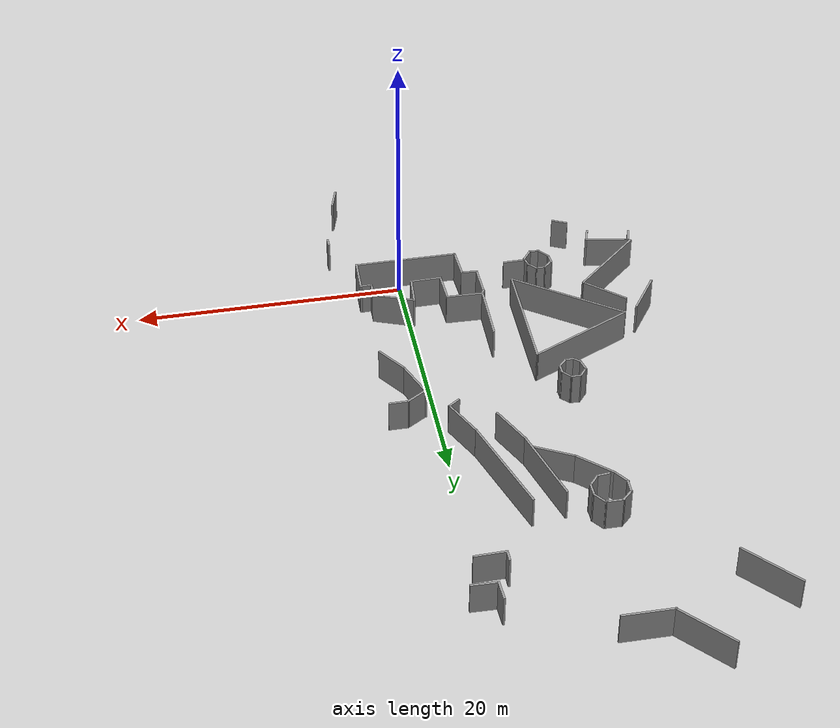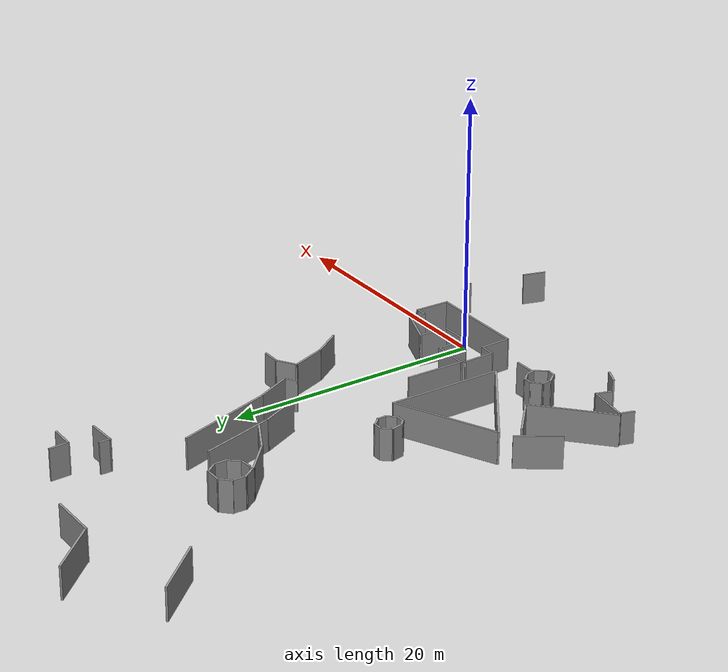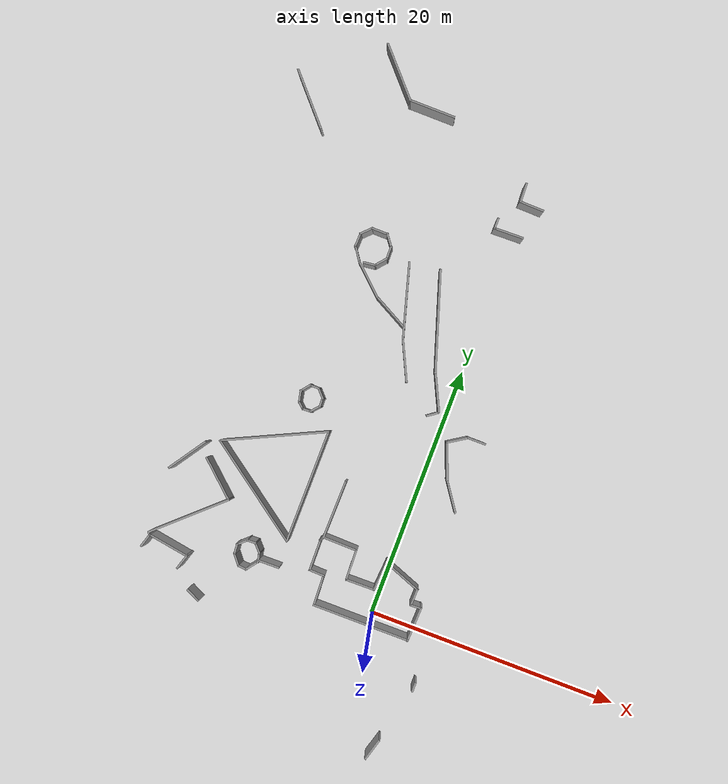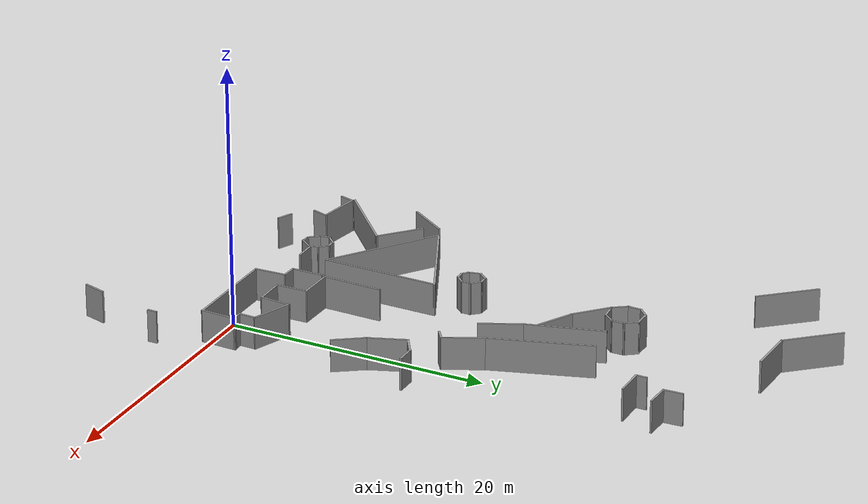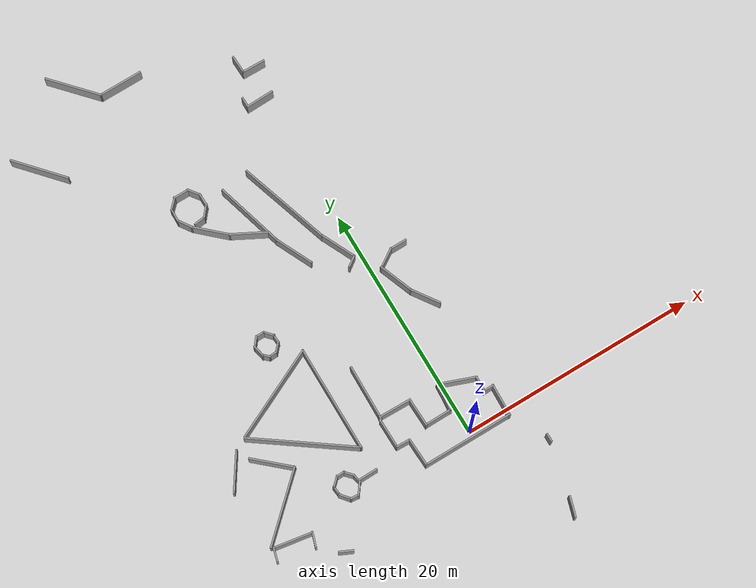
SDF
<sdf version="1.6">
 <model name="mall_new_reduce_size">
  <pose>-6.80917 7.5529 0 0 -0 0</pose>
  <link name="Wall_102">
   <collision name="Wall_102_Collision">
    <geometry><box><size>0.911014 0.15 2.5</size></box></geometry>
    <pose>0 0 1.25 0 -0 0</pose>
   </collision>
   <visual name="Wall_102_Visual">
    <pose>0 0 1.25 0 -0 0</pose>
    <geometry><box><size>0.911014 0.15 2.5</size></box></geometry>
    <material>
     <script><uri>file://media/materials/scripts/gazebo.material</uri><name>Gazebo/Grey</name></script>
     <ambient>1 1 1 1</ambient>
    </material>
    <meta><layer>0</layer></meta>
   </visual>
   <pose>5.13908 23.8484 0 0 -0 -1.5708</pose>
  </link>
  <link name="Wall_103">
   <collision name="Wall_103_Collision">
    <geometry><box><size>2.3915 0.15 2.5</size></box></geometry>
    <pose>0 0 1.25 0 -0 0</pose>
   </collision>
   <visual name="Wall_103_Visual">
    <pose>0 0 1.25 0 -0 0</pose>
    <geometry><box><size>2.3915 0.15 2.5</size></box></geometry>
    <material>
     <script><uri>file://media/materials/scripts/gazebo.material</uri><name>Gazebo/Grey</name></script>
     <ambient>1 1 1 1</ambient>
    </material>
    <meta><layer>0</layer></meta>
   </visual>
   <pose>6.25953 23.4864 0 0 -0 0.02316</pose>
  </link>
  <link name="Wall_126">
   <collision name="Wall_126_Collision">
    <geometry><box><size>1.5 0.15 2.5</size></box></geometry>
    <pose>0 0 1.25 0 -0 0</pose>
   </collision>
   <visual name="Wall_126_Visual">
    <pose>0 0 1.25 0 -0 0</pose>
    <geometry><box><size>1.5 0.15 2.5</size></box></geometry>
    <material>
     <script><uri>file://media/materials/scripts/gazebo.material</uri><name>Gazebo/Grey</name></script>
     <ambient>1 1 1 1</ambient>
    </material>
    <meta><layer>0</layer></meta>
   </visual>
   <pose>9.56035 7.86068 0 0 -0 3.14159</pose>
  </link>
  <link name="Wall_127">
   <collision name="Wall_127_Collision">
    <geometry><box><size>1.79669 0.15 2.5</size></box></geometry>
    <pose>0 0 1.25 0 -0 0</pose>
   </collision>
   <visual name="Wall_127_Visual">
    <pose>0 0 1.25 0 -0 0</pose>
    <geometry><box><size>1.79669 0.15 2.5</size></box></geometry>
    <material>
     <script><uri>file://media/materials/scripts/gazebo.material</uri><name>Gazebo/Grey</name></script>
     <ambient>1 1 1 1</ambient>
    </material>
    <meta><layer>0</layer></meta>
   </visual>
   <pose>8.19253 7.41582 0 0 -0 -2.57079</pose>
  </link>
  <link name="Wall_128">
   <collision name="Wall_128_Collision">
    <geometry><box><size>3.04987 0.15 2.5</size></box></geometry>
    <pose>0 0 1.25 0 -0 0</pose>
   </collision>
   <visual name="Wall_128_Visual">
    <pose>0 0 1.25 0 -0 0</pose>
    <geometry><box><size>3.04987 0.15 2.5</size></box></geometry>
    <material>
     <script><uri>file://media/materials/scripts/gazebo.material</uri><name>Gazebo/Grey</name></script>
     <ambient>1 1 1 1</ambient>
    </material>
    <meta><layer>0</layer></meta>
   </visual>
   <pose>8.01735 5.63901 0 0 -0 -1.20574</pose>
  </link>
  <link name="Wall_129">
   <collision name="Wall_129_Collision">
    <geometry><box><size>2.67124 0.15 2.5</size></box></geometry>
    <pose>0 0 1.25 0 -0 0</pose>
   </collision>
   <visual name="Wall_129_Visual">
    <pose>0 0 1.25 0 -0 0</pose>
    <geometry><box><size>2.67124 0.15 2.5</size></box></geometry>
    <material>
     <script><uri>file://media/materials/scripts/gazebo.material</uri><name>Gazebo/Grey</name></script>
     <ambient>1 1 1 1</ambient>
    </material>
    <meta><layer>0</layer></meta>
   </visual>
   <pose>9.25128 3.23607 0 0 -0 -0.966457</pose>
  </link>
  <link name="Wall_221">
   <collision name="Wall_221_Collision">
    <geometry><box><size>1.80269 0.15 2.5</size></box></geometry>
    <pose>0 0 1.25 0 -0 0</pose>
   </collision>
   <visual name="Wall_221_Visual">
    <pose>0 0 1.25 0 -0 0</pose>
    <geometry><box><size>1.80269 0.15 2.5</size></box></geometry>
    <material>
     <script><uri>file://media/materials/scripts/gazebo.material</uri><name>Gazebo/Grey</name></script>
     <ambient>1 1 1 1</ambient>
    </material>
    <meta><layer>0</layer></meta>
   </visual>
   <pose>10.4346 -16.8787 0 0 -0 1.2841</pose>
  </link>
  <link name="Wall_232">
   <collision name="Wall_232_Collision">
    <geometry><box><size>0.75 0.15 2.5</size></box></geometry>
    <pose>0 0 1.25 0 -0 0</pose>
   </collision>
   <visual name="Wall_232_Visual">
    <pose>0 0 1.25 0 -0 0</pose>
    <geometry><box><size>0.75 0.15 2.5</size></box></geometry>
    <material>
     <script><uri>file://media/materials/scripts/gazebo.material</uri><name>Gazebo/Grey</name></script>
     <ambient>1 1 1 1</ambient>
    </material>
    <meta><layer>0</layer></meta>
   </visual>
   <pose>11.7121 -11.3214 0 0 -0 1.5708</pose>
  </link>
  <link name="Wall_245">
   <collision name="Wall_245_Collision">
    <geometry><box><size>4.70437 0.15 2.5</size></box></geometry>
    <pose>0 0 1.25 0 -0 0</pose>
   </collision>
   <visual name="Wall_245_Visual">
    <pose>0 0 1.25 0 -0 0</pose>
    <geometry><box><size>4.70437 0.15 2.5</size></box></geometry>
    <material>
     <script><uri>file://media/materials/scripts/gazebo.material</uri><name>Gazebo/Grey</name></script>
     <ambient>1 1 1 1</ambient>
    </material>
    <meta><layer>0</layer></meta>
   </visual>
   <pose>1.30808 -0.867008 0 0 -0 -1.58931</pose>
  </link>
  <link name="Wall_246">
   <collision name="Wall_246_Collision">
    <geometry><box><size>0.40844 0.15 2.5</size></box></geometry>
    <pose>0 0 1.25 0 -0 0</pose>
   </collision>
   <visual name="Wall_246_Visual">
    <pose>0 0 1.25 0 -0 0</pose>
    <geometry><box><size>0.40844 0.15 2.5</size></box></geometry>
    <material>
     <script><uri>file://media/materials/scripts/gazebo.material</uri><name>Gazebo/Grey</name></script>
     <ambient>1 1 1 1</ambient>
    </material>
    <meta><layer>0</layer></meta>
   </visual>
   <pose>1.19003 -3.26525 0 0 -0 -2.19847</pose>
  </link>
  <link name="Wall_247">
   <collision name="Wall_247_Collision">
    <geometry><box><size>2.53 0.15 2.5</size></box></geometry>
    <pose>0 0 1.25 0 -0 0</pose>
   </collision>
   <visual name="Wall_247_Visual">
    <pose>0 0 1.25 0 -0 0</pose>
    <geometry><box><size>2.53 0.15 2.5</size></box></geometry>
    <material>
     <script><uri>file://media/materials/scripts/gazebo.material</uri><name>Gazebo/Grey</name></script>
     <ambient>1 1 1 1</ambient>
    </material>
    <meta><layer>0</layer></meta>
   </visual>
   <pose>1.14793 -4.55973 0 0 -0 -1.55658</pose>
  </link>
  <link name="Wall_248">
   <collision name="Wall_248_Collision">
    <geometry><box><size>1.286 0.15 2.5</size></box></geometry>
    <pose>0 0 1.25 0 -0 0</pose>
   </collision>
   <visual name="Wall_248_Visual">
    <pose>0 0 1.25 0 -0 0</pose>
    <geometry><box><size>1.286 0.15 2.5</size></box></geometry>
    <material>
     <script><uri>file://media/materials/scripts/gazebo.material</uri><name>Gazebo/Grey</name></script>
     <ambient>1 1 1 1</ambient>
    </material>
    <meta><layer>0</layer></meta>
   </visual>
   <pose>1.73245 -5.78757 0 0 -0 -0.037153</pose>
  </link>
  <link name="Wall_249">
   <collision name="Wall_249_Collision">
    <geometry><box><size>2.45157 0.15 2.5</size></box></geometry>
    <pose>0 0 1.25 0 -0 0</pose>
   </collision>
   <visual name="Wall_249_Visual">
    <pose>0 0 1.25 0 -0 0</pose>
    <geometry><box><size>2.45157 0.15 2.5</size></box></geometry>
    <material>
     <script><uri>file://media/materials/scripts/gazebo.material</uri><name>Gazebo/Grey</name></script>
     <ambient>1 1 1 1</ambient>
    </material>
    <meta><layer>0</layer></meta>
   </visual>
   <pose>2.35085 -6.98766 0 0 -0 -1.52665</pose>
  </link>
  <link name="Wall_250">
   <collision name="Wall_250_Collision">
    <geometry><box><size>7.76065 0.15 2.5</size></box></geometry>
    <pose>0 0 1.25 0 -0 0</pose>
   </collision>
   <visual name="Wall_250_Visual">
    <pose>0 0 1.25 0 -0 0</pose>
    <geometry><box><size>7.76065 0.15 2.5</size></box></geometry>
    <material>
     <script><uri>file://media/materials/scripts/gazebo.material</uri><name>Gazebo/Grey</name></script>
     <ambient>1 1 1 1</ambient>
    </material>
    <meta><layer>0</layer></meta>
   </visual>
   <pose>6.20696 -8.14975 0 0 -0 0.000586</pose>
  </link>
  <link name="Wall_251">
   <collision name="Wall_251_Collision">
    <geometry><box><size>2.80823 0.15 2.5</size></box></geometry>
    <pose>0 0 1.25 0 -0 0</pose>
   </collision>
   <visual name="Wall_251_Visual">
    <pose>0 0 1.25 0 -0 0</pose>
    <geometry><box><size>2.80823 0.15 2.5</size></box></geometry>
    <material>
     <script><uri>file://media/materials/scripts/gazebo.material</uri><name>Gazebo/Grey</name></script>
     <ambient>1 1 1 1</ambient>
    </material>
    <meta><layer>0</layer></meta>
   </visual>
   <pose>10.0559 -6.84845 0 0 -0 1.53799</pose>
  </link>
  <link name="Wall_252">
   <collision name="Wall_252_Collision">
    <geometry><box><size>0.933606 0.15 2.5</size></box></geometry>
    <pose>0 0 1.25 0 -0 0</pose>
   </collision>
   <visual name="Wall_252_Visual">
    <pose>0 0 1.25 0 -0 0</pose>
    <geometry><box><size>0.933606 0.15 2.5</size></box></geometry>
    <material>
     <script><uri>file://media/materials/scripts/gazebo.material</uri><name>Gazebo/Grey</name></script>
     <ambient>1 1 1 1</ambient>
    </material>
    <meta><layer>0</layer></meta>
   </visual>
   <pose>9.70783 -5.54603 0 0 -0 -3.11272</pose>
  </link>
  <link name="Wall_253">
   <collision name="Wall_253_Collision">
    <geometry><box><size>1.38548 0.15 2.5</size></box></geometry>
    <pose>0 0 1.25 0 -0 0</pose>
   </collision>
   <visual name="Wall_253_Visual">
    <pose>0 0 1.25 0 -0 0</pose>
    <geometry><box><size>1.38548 0.15 2.5</size></box></geometry>
    <material>
     <script><uri>file://media/materials/scripts/gazebo.material</uri><name>Gazebo/Grey</name></script>
     <ambient>1 1 1 1</ambient>
    </material>
    <meta><layer>0</layer></meta>
   </visual>
   <pose>9.31734 -4.9398 0 0 -0 1.54519</pose>
  </link>
  <link name="Wall_254">
   <collision name="Wall_254_Collision">
    <geometry><box><size>3.27138 0.15 2.5</size></box></geometry>
    <pose>0 0 1.25 0 -0 0</pose>
   </collision>
   <visual name="Wall_254_Visual">
    <pose>0 0 1.25 0 -0 0</pose>
    <geometry><box><size>3.27138 0.15 2.5</size></box></geometry>
    <material>
     <script><uri>file://media/materials/scripts/gazebo.material</uri><name>Gazebo/Grey</name></script>
     <ambient>1 1 1 1</ambient>
    </material>
    <meta><layer>0</layer></meta>
   </visual>
   <pose>7.88874 -3.75366 0 0 -0 2.77875</pose>
  </link>
  <link name="Wall_255">
   <collision name="Wall_255_Collision">
    <geometry><box><size>2.43165 0.15 2.5</size></box></geometry>
    <pose>0 0 1.25 0 -0 0</pose>
   </collision>
   <visual name="Wall_255_Visual">
    <pose>0 0 1.25 0 -0 0</pose>
    <geometry><box><size>2.43165 0.15 2.5</size></box></geometry>
    <material>
     <script><uri>file://media/materials/scripts/gazebo.material</uri><name>Gazebo/Grey</name></script>
     <ambient>1 1 1 1</ambient>
    </material>
    <meta><layer>0</layer></meta>
   </visual>
   <pose>6.35442 -4.32233 0 0 -0 -1.64969</pose>
  </link>
  <link name="Wall_256">
   <collision name="Wall_256_Collision">
    <geometry><box><size>2.39373 0.15 2.5</size></box></geometry>
    <pose>0 0 1.25 0 -0 0</pose>
   </collision>
   <visual name="Wall_256_Visual">
    <pose>0 0 1.25 0 -0 0</pose>
    <geometry><box><size>2.39373 0.15 2.5</size></box></geometry>
    <material>
     <script><uri>file://media/materials/scripts/gazebo.material</uri><name>Gazebo/Grey</name></script>
     <ambient>1 1 1 1</ambient>
    </material>
    <meta><layer>0</layer></meta>
   </visual>
   <pose>5.14271 -5.45702 0 0 -0 -3.13083</pose>
  </link>
  <link name="Wall_257">
   <collision name="Wall_257_Collision">
    <geometry><box><size>2.48743 0.15 2.5</size></box></geometry>
    <pose>0 0 1.25 0 -0 0</pose>
   </collision>
   <visual name="Wall_257_Visual">
    <pose>0 0 1.25 0 -0 0</pose>
    <geometry><box><size>2.48743 0.15 2.5</size></box></geometry>
    <material>
     <script><uri>file://media/materials/scripts/gazebo.material</uri><name>Gazebo/Grey</name></script>
     <ambient>1 1 1 1</ambient>
    </material>
    <meta><layer>0</layer></meta>
   </visual>
   <pose>3.98296 -4.31566 0 0 -0 1.60328</pose>
  </link>
  <link name="Wall_258">
   <collision name="Wall_258_Collision">
    <geometry><box><size>2.86843 0.15 2.5</size></box></geometry>
    <pose>0 0 1.25 0 -0 0</pose>
   </collision>
   <visual name="Wall_258_Visual">
    <pose>0 0 1.25 0 -0 0</pose>
    <geometry><box><size>2.86843 0.15 2.5</size></box></geometry>
    <material>
     <script><uri>file://media/materials/scripts/gazebo.material</uri><name>Gazebo/Grey</name></script>
     <ambient>1 1 1 1</ambient>
    </material>
    <meta><layer>0</layer></meta>
   </visual>
   <pose>2.58612 -3.10264 0 0 -0 3.11933</pose>
  </link>
  <link name="Wall_262">
   <collision name="Wall_262_Collision">
    <geometry><box><size>8.27755 0.15 2.5</size></box></geometry>
    <pose>0 0 1.25 0 -0 0</pose>
   </collision>
   <visual name="Wall_262_Visual">
    <pose>0 0 1.25 0 -0 0</pose>
    <geometry><box><size>8.27755 0.15 2.5</size></box></geometry>
    <material>
     <script><uri>file://media/materials/scripts/gazebo.material</uri><name>Gazebo/Grey</name></script>
     <ambient>1 1 1 1</ambient>
    </material>
    <meta><layer>0</layer></meta>
   </visual>
   <pose>-4.89745 2.80266 0 0 -0 0.439294</pose>
  </link>
  <link name="Wall_263">
   <collision name="Wall_263_Collision">
    <geometry><box><size>9.01306 0.15 2.5</size></box></geometry>
    <pose>0 0 1.25 0 -0 0</pose>
   </collision>
   <visual name="Wall_263_Visual">
    <pose>0 0 1.25 0 -0 0</pose>
    <geometry><box><size>9.01306 0.15 2.5</size></box></geometry>
    <material>
     <script><uri>file://media/materials/scripts/gazebo.material</uri><name>Gazebo/Grey</name></script>
     <ambient>1 1 1 1</ambient>
    </material>
    <meta><layer>0</layer></meta>
   </visual>
   <pose>-1.21952 0.09951 0 0 -0 -1.57583</pose>
  </link>
  <link name="Wall_264">
   <collision name="Wall_264_Collision">
    <geometry><box><size>9.26002 0.15 2.5</size></box></geometry>
    <pose>0 0 1.25 0 -0 0</pose>
   </collision>
   <visual name="Wall_264_Visual">
    <pose>0 0 1.25 0 -0 0</pose>
    <geometry><box><size>9.26002 0.15 2.5</size></box></geometry>
    <material>
     <script><uri>file://media/materials/scripts/gazebo.material</uri><name>Gazebo/Grey</name></script>
     <ambient>1 1 1 1</ambient>
    </material>
    <meta><layer>0</layer></meta>
   </visual>
   <pose>-4.95834 -1.66721 0 0 -0 2.51669</pose>
  </link>
  <link name="Wall_267">
   <collision name="Wall_267_Collision">
    <geometry><box><size>0.820925 0.15 2.5</size></box></geometry>
    <pose>0 0 1.25 0 -0 0</pose>
   </collision>
   <visual name="Wall_267_Visual">
    <pose>0 0 1.25 0 -0 0</pose>
    <geometry><box><size>0.820925 0.15 2.5</size></box></geometry>
    <material>
     <script><uri>file://media/materials/scripts/gazebo.material</uri><name>Gazebo/Grey</name></script>
     <ambient>1 1 1 1</ambient>
    </material>
    <meta><layer>0</layer></meta>
   </visual>
   <pose>-4.64546 -6.23474 0 0 -0 1.67128</pose>
  </link>
  <link name="Wall_268">
   <collision name="Wall_268_Collision">
    <geometry><box><size>1.02099 0.15 2.5</size></box></geometry>
    <pose>0 0 1.25 0 -0 0</pose>
   </collision>
   <visual name="Wall_268_Visual">
    <pose>0 0 1.25 0 -0 0</pose>
    <geometry><box><size>1.02099 0.15 2.5</size></box></geometry>
    <material>
     <script><uri>file://media/materials/scripts/gazebo.material</uri><name>Gazebo/Grey</name></script>
     <ambient>1 1 1 1</ambient>
    </material>
    <meta><layer>0</layer></meta>
   </visual>
   <pose>-4.34926 -5.61512 0 0 -0 0.761586</pose>
  </link>
  <link name="Wall_269">
   <collision name="Wall_269_Collision">
    <geometry><box><size>0.764839 0.15 2.5</size></box></geometry>
    <pose>0 0 1.25 0 -0 0</pose>
   </collision>
   <visual name="Wall_269_Visual">
    <pose>0 0 1.25 0 -0 0</pose>
    <geometry><box><size>0.764839 0.15 2.5</size></box></geometry>
    <material>
     <script><uri>file://media/materials/scripts/gazebo.material</uri><name>Gazebo/Grey</name></script>
     <ambient>1 1 1 1</ambient>
    </material>
    <meta><layer>0</layer></meta>
   </visual>
   <pose>-3.71208 -5.32193 0 0 -0 0.023853</pose>
  </link>
  <link name="Wall_270">
   <collision name="Wall_270_Collision">
    <geometry><box><size>0.937561 0.15 2.5</size></box></geometry>
    <pose>0 0 1.25 0 -0 0</pose>
   </collision>
   <visual name="Wall_270_Visual">
    <pose>0 0 1.25 0 -0 0</pose>
    <geometry><box><size>0.937561 0.15 2.5</size></box></geometry>
    <material>
     <script><uri>file://media/materials/scripts/gazebo.material</uri><name>Gazebo/Grey</name></script>
     <ambient>1 1 1 1</ambient>
    </material>
    <meta><layer>0</layer></meta>
   </visual>
   <pose>-3.13761 -5.61857 0 0 -0 -0.825217</pose>
  </link>
  <link name="Wall_271">
   <collision name="Wall_271_Collision">
    <geometry><box><size>0.841723 0.15 2.5</size></box></geometry>
    <pose>0 0 1.25 0 -0 0</pose>
   </collision>
   <visual name="Wall_271_Visual">
    <pose>0 0 1.25 0 -0 0</pose>
    <geometry><box><size>0.841723 0.15 2.5</size></box></geometry>
    <material>
     <script><uri>file://media/materials/scripts/gazebo.material</uri><name>Gazebo/Grey</name></script>
     <ambient>1 1 1 1</ambient>
    </material>
    <meta><layer>0</layer></meta>
   </visual>
   <pose>-2.79889 -6.26091 0 0 -0 -1.36232</pose>
  </link>
  <link name="Wall_272">
   <collision name="Wall_272_Collision">
    <geometry><box><size>1.2184 0.15 2.5</size></box></geometry>
    <pose>0 0 1.25 0 -0 0</pose>
   </collision>
   <visual name="Wall_272_Visual">
    <pose>0 0 1.25 0 -0 0</pose>
    <geometry><box><size>1.2184 0.15 2.5</size></box></geometry>
    <material>
     <script><uri>file://media/materials/scripts/gazebo.material</uri><name>Gazebo/Grey</name></script>
     <ambient>1 1 1 1</ambient>
    </material>
    <meta><layer>0</layer></meta>
   </visual>
   <pose>-3.04961 -7.02531 0 0 -0 -2.21847</pose>
  </link>
  <link name="Wall_273">
   <collision name="Wall_273_Collision">
    <geometry><box><size>0.777136 0.15 2.5</size></box></geometry>
    <pose>0 0 1.25 0 -0 0</pose>
   </collision>
   <visual name="Wall_273_Visual">
    <pose>0 0 1.25 0 -0 0</pose>
    <geometry><box><size>0.777136 0.15 2.5</size></box></geometry>
    <material>
     <script><uri>file://media/materials/scripts/gazebo.material</uri><name>Gazebo/Grey</name></script>
     <ambient>1 1 1 1</ambient>
    </material>
    <meta><layer>0</layer></meta>
   </visual>
   <pose>-3.68436 -7.41023 0 0 -0 3.05721</pose>
  </link>
  <link name="Wall_274">
   <collision name="Wall_274_Collision">
    <geometry><box><size>1.15435 0.15 2.5</size></box></geometry>
    <pose>0 0 1.25 0 -0 0</pose>
   </collision>
   <visual name="Wall_274_Visual">
    <pose>0 0 1.25 0 -0 0</pose>
    <geometry><box><size>1.15435 0.15 2.5</size></box></geometry>
    <material>
     <script><uri>file://media/materials/scripts/gazebo.material</uri><name>Gazebo/Grey</name></script>
     <ambient>1 1 1 1</ambient>
    </material>
    <meta><layer>0</layer></meta>
   </visual>
   <pose>-4.31455 -7.00602 0 0 -0 2.25587</pose>
  </link>
  <link name="Wall_280">
   <collision name="Wall_280_Collision">
    <geometry><box><size>1.75812 0.15 2.5</size></box></geometry>
    <pose>0 0 1.25 0 -0 0</pose>
   </collision>
   <visual name="Wall_280_Visual">
    <pose>0 0 1.25 0 -0 0</pose>
    <geometry><box><size>1.75812 0.15 2.5</size></box></geometry>
    <material>
     <script><uri>file://media/materials/scripts/gazebo.material</uri><name>Gazebo/Grey</name></script>
     <ambient>1 1 1 1</ambient>
    </material>
    <meta><layer>0</layer></meta>
   </visual>
   <pose>-1.93612 -6.45549 0 0 -0 0.013364</pose>
  </link>
  <link name="Wall_284">
   <collision name="Wall_284_Collision">
    <geometry><box><size>1.3189 0.15 2.5</size></box></geometry>
    <pose>0 0 1.25 0 -0 0</pose>
   </collision>
   <visual name="Wall_284_Visual">
    <pose>0 0 1.25 0 -0 0</pose>
    <geometry><box><size>1.3189 0.15 2.5</size></box></geometry>
    <material>
     <script><uri>file://media/materials/scripts/gazebo.material</uri><name>Gazebo/Grey</name></script>
     <ambient>1 1 1 1</ambient>
    </material>
    <meta><layer>0</layer></meta>
   </visual>
   <pose>-8.11493 -8.61894 0 0 -0 1.26497</pose>
  </link>
  <link name="Wall_285">
   <collision name="Wall_285_Collision">
    <geometry><box><size>3.37777 0.15 2.5</size></box></geometry>
    <pose>0 0 1.25 0 -0 0</pose>
   </collision>
   <visual name="Wall_285_Visual">
    <pose>0 0 1.25 0 -0 0</pose>
    <geometry><box><size>3.37777 0.15 2.5</size></box></geometry>
    <material>
     <script><uri>file://media/materials/scripts/gazebo.material</uri><name>Gazebo/Grey</name></script>
     <ambient>1 1 1 1</ambient>
    </material>
    <meta><layer>0</layer></meta>
   </visual>
   <pose>-9.56079 -7.81441 0 0 -0 2.97862</pose>
  </link>
  <link name="Wall_286">
   <collision name="Wall_286_Collision">
    <geometry><box><size>1.21161 0.15 2.5</size></box></geometry>
    <pose>0 0 1.25 0 -0 0</pose>
   </collision>
   <visual name="Wall_286_Visual">
    <pose>0 0 1.25 0 -0 0</pose>
    <geometry><box><size>1.21161 0.15 2.5</size></box></geometry>
    <material>
     <script><uri>file://media/materials/scripts/gazebo.material</uri><name>Gazebo/Grey</name></script>
     <ambient>1 1 1 1</ambient>
    </material>
    <meta><layer>0</layer></meta>
   </visual>
   <pose>-11.2883 -8.06181 0 0 -0 -1.85667</pose>
  </link>
  <link name="Wall_289">
   <collision name="Wall_289_Collision">
    <geometry><box><size>3.74389 0.15 2.5</size></box></geometry>
    <pose>0 0 1.25 0 -0 0</pose>
   </collision>
   <visual name="Wall_289_Visual">
    <pose>0 0 1.25 0 -0 0</pose>
    <geometry><box><size>3.74389 0.15 2.5</size></box></geometry>
    <material>
     <script><uri>file://media/materials/scripts/gazebo.material</uri><name>Gazebo/Grey</name></script>
     <ambient>1 1 1 1</ambient>
    </material>
    <meta><layer>0</layer></meta>
   </visual>
   <pose>-7.8177 -1.7822 0 0 -0 -0.730552</pose>
  </link>
  <link name="Wall_293">
   <collision name="Wall_293_Collision">
    <geometry><box><size>6.69055 0.15 2.5</size></box></geometry>
    <pose>0 0 1.25 0 -0 0</pose>
   </collision>
   <visual name="Wall_293_Visual">
    <pose>0 0 1.25 0 -0 0</pose>
    <geometry><box><size>6.69055 0.15 2.5</size></box></geometry>
    <material>
     <script><uri>file://media/materials/scripts/gazebo.material</uri><name>Gazebo/Grey</name></script>
     <ambient>1 1 1 1</ambient>
    </material>
    <meta><layer>0</layer></meta>
   </visual>
   <pose>-8.88827 -5.19299 0 0 -0 -2.39885</pose>
  </link>
  <link name="Wall_296">
   <collision name="Wall_296_Collision">
    <geometry><box><size>3.4822 0.15 2.5</size></box></geometry>
    <pose>0 0 1.25 0 -0 0</pose>
   </collision>
   <visual name="Wall_296_Visual">
    <pose>0 0 1.25 0 -0 0</pose>
    <geometry><box><size>3.4822 0.15 2.5</size></box></geometry>
    <material>
     <script><uri>file://media/materials/scripts/gazebo.material</uri><name>Gazebo/Grey</name></script>
     <ambient>1 1 1 1</ambient>
    </material>
    <meta><layer>0</layer></meta>
   </visual>
   <pose>-10.6311 -0.878716 0 0 -0 -2.16478</pose>
  </link>
  <link name="Wall_311">
   <collision name="Wall_311_Collision">
    <geometry><box><size>1.25215 0.15 2.5</size></box></geometry>
    <pose>0 0 1.25 0 -0 0</pose>
   </collision>
   <visual name="Wall_311_Visual">
    <pose>0 0 1.25 0 -0 0</pose>
    <geometry><box><size>1.25215 0.15 2.5</size></box></geometry>
    <material>
     <script><uri>file://media/materials/scripts/gazebo.material</uri><name>Gazebo/Grey</name></script>
     <ambient>1 1 1 1</ambient>
    </material>
    <meta><layer>0</layer></meta>
   </visual>
   <pose>-6.46 -10.6998 0 0 -0 -0.437998</pose>
  </link>
  <link name="Wall_320">
   <collision name="Wall_320_Collision">
    <geometry><box><size>0.75 0.15 2.5</size></box></geometry>
    <pose>0 0 1.25 0 -0 0</pose>
   </collision>
   <visual name="Wall_320_Visual">
    <pose>0 0 1.25 0 -0 0</pose>
    <geometry><box><size>0.75 0.15 2.5</size></box></geometry>
    <material>
     <script><uri>file://media/materials/scripts/gazebo.material</uri><name>Gazebo/Grey</name></script>
     <ambient>1 1 1 1</ambient>
    </material>
    <meta><layer>0</layer></meta>
   </visual>
   <pose>-3.3723 7.36494 0 0 -0 0</pose>
  </link>
  <link name="Wall_321">
   <collision name="Wall_321_Collision">
    <geometry><box><size>0.996431 0.15 2.5</size></box></geometry>
    <pose>0 0 1.25 0 -0 0</pose>
   </collision>
   <visual name="Wall_321_Visual">
    <pose>0 0 1.25 0 -0 0</pose>
    <geometry><box><size>0.996431 0.15 2.5</size></box></geometry>
    <material>
     <script><uri>file://media/materials/scripts/gazebo.material</uri><name>Gazebo/Grey</name></script>
     <ambient>1 1 1 1</ambient>
    </material>
    <meta><layer>0</layer></meta>
   </visual>
   <pose>-2.78786 7.05157 0 0 -0 -0.833746</pose>
  </link>
  <link name="Wall_322">
   <collision name="Wall_322_Collision">
    <geometry><box><size>0.808487 0.15 2.5</size></box></geometry>
    <pose>0 0 1.25 0 -0 0</pose>
   </collision>
   <visual name="Wall_322_Visual">
    <pose>0 0 1.25 0 -0 0</pose>
    <geometry><box><size>0.808487 0.15 2.5</size></box></geometry>
    <material>
     <script><uri>file://media/materials/scripts/gazebo.material</uri><name>Gazebo/Grey</name></script>
     <ambient>1 1 1 1</ambient>
    </material>
    <meta><layer>0</layer></meta>
   </visual>
   <pose>-2.51788 6.42855 0 0 -0 -1.52686</pose>
  </link>
  <link name="Wall_323">
   <collision name="Wall_323_Collision">
    <geometry><box><size>0.955507 0.15 2.5</size></box></geometry>
    <pose>0 0 1.25 0 -0 0</pose>
   </collision>
   <visual name="Wall_323_Visual">
    <pose>0 0 1.25 0 -0 0</pose>
    <geometry><box><size>0.955507 0.15 2.5</size></box></geometry>
    <material>
     <script><uri>file://media/materials/scripts/gazebo.material</uri><name>Gazebo/Grey</name></script>
     <ambient>1 1 1 1</ambient>
    </material>
    <meta><layer>0</layer></meta>
   </visual>
   <pose>-2.77393 5.81089 0 0 -0 -2.30728</pose>
  </link>
  <link name="Wall_324">
   <collision name="Wall_324_Collision">
    <geometry><box><size>0.751238 0.15 2.5</size></box></geometry>
    <pose>0 0 1.25 0 -0 0</pose>
   </collision>
   <visual name="Wall_324_Visual">
    <pose>0 0 1.25 0 -0 0</pose>
    <geometry><box><size>0.751238 0.15 2.5</size></box></geometry>
    <material>
     <script><uri>file://media/materials/scripts/gazebo.material</uri><name>Gazebo/Grey</name></script>
     <ambient>1 1 1 1</ambient>
    </material>
    <meta><layer>0</layer></meta>
   </visual>
   <pose>-3.34446 5.48841 0 0 -0 -3.09342</pose>
  </link>
  <link name="Wall_325">
   <collision name="Wall_325_Collision">
    <geometry><box><size>0.725352 0.15 2.5</size></box></geometry>
    <pose>0 0 1.25 0 -0 0</pose>
   </collision>
   <visual name="Wall_325_Visual">
    <pose>0 0 1.25 0 -0 0</pose>
    <geometry><box><size>0.725352 0.15 2.5</size></box></geometry>
    <material>
     <script><uri>file://media/materials/scripts/gazebo.material</uri><name>Gazebo/Grey</name></script>
     <ambient>1 1 1 1</ambient>
    </material>
    <meta><layer>0</layer></meta>
   </visual>
   <pose>-3.85498 5.66037 0 0 -0 2.39175</pose>
  </link>
  <link name="Wall_326">
   <collision name="Wall_326_Collision">
    <geometry><box><size>1.06843 0.15 2.5</size></box></geometry>
    <pose>0 0 1.25 0 -0 0</pose>
   </collision>
   <visual name="Wall_326_Visual">
    <pose>0 0 1.25 0 -0 0</pose>
    <geometry><box><size>1.06843 0.15 2.5</size></box></geometry>
    <material>
     <script><uri>file://media/materials/scripts/gazebo.material</uri><name>Gazebo/Grey</name></script>
     <ambient>1 1 1 1</ambient>
    </material>
    <meta><layer>0</layer></meta>
   </visual>
   <pose>-4.18171 6.28601 0 0 -0 1.78347</pose>
  </link>
  <link name="Wall_327">
   <collision name="Wall_327_Collision">
    <geometry><box><size>0.999026 0.15 2.5</size></box></geometry>
    <pose>0 0 1.25 0 -0 0</pose>
   </collision>
   <visual name="Wall_327_Visual">
    <pose>0 0 1.25 0 -0 0</pose>
    <geometry><box><size>0.999026 0.15 2.5</size></box></geometry>
    <material>
     <script><uri>file://media/materials/scripts/gazebo.material</uri><name>Gazebo/Grey</name></script>
     <ambient>1 1 1 1</ambient>
    </material>
    <meta><layer>0</layer></meta>
   </visual>
   <pose>-4.0137 7.04728 0 0 -0 0.8968</pose>
  </link>
  <link name="Wall_53">
   <collision name="Wall_53_Collision">
    <geometry><box><size>4.7206 0.15 2.5</size></box></geometry>
    <pose>0 0 1.25 0 -0 0</pose>
   </collision>
   <visual name="Wall_53_Visual">
    <pose>0 0 1.25 0 -0 0</pose>
    <geometry><box><size>4.7206 0.15 2.5</size></box></geometry>
    <material>
     <script><uri>file://media/materials/scripts/gazebo.material</uri><name>Gazebo/Grey</name></script>
     <ambient>1 1 1 1</ambient>
    </material>
    <meta><layer>0</layer></meta>
   </visual>
   <pose>-5.84483 31.9838 0 0 -0 -0.834461</pose>
  </link>
  <link name="Wall_54">
   <collision name="Wall_54_Collision">
    <geometry><box><size>3.72999 0.15 2.5</size></box></geometry>
    <pose>0 0 1.25 0 -0 0</pose>
   </collision>
   <visual name="Wall_54_Visual">
    <pose>0 0 1.25 0 -0 0</pose>
    <geometry><box><size>3.72999 0.15 2.5</size></box></geometry>
    <material>
     <script><uri>file://media/materials/scripts/gazebo.material</uri><name>Gazebo/Grey</name></script>
     <ambient>1 1 1 1</ambient>
    </material>
    <meta><layer>0</layer></meta>
   </visual>
   <pose>-2.53762 30.2774 0 0 -0 -0.007328</pose>
  </link>
  <link name="Wall_58">
   <collision name="Wall_58_Collision">
    <geometry><box><size>4.86048 0.15 2.5</size></box></geometry>
    <pose>0 0 1.25 0 -0 0</pose>
   </collision>
   <visual name="Wall_58_Visual">
    <pose>0 0 1.25 0 -0 0</pose>
    <geometry><box><size>4.86048 0.15 2.5</size></box></geometry>
    <material>
     <script><uri>file://media/materials/scripts/gazebo.material</uri><name>Gazebo/Grey</name></script>
     <ambient>1 1 1 1</ambient>
    </material>
    <meta><layer>0</layer></meta>
   </visual>
   <pose>-11.5025 27.6865 0 0 -0 -0.844353</pose>
  </link>
  <link name="Wall_75">
   <collision name="Wall_75_Collision">
    <geometry><box><size>0.996724 0.15 2.5</size></box></geometry>
    <pose>0 0 1.25 0 -0 0</pose>
   </collision>
   <visual name="Wall_75_Visual">
    <pose>0 0 1.25 0 -0 0</pose>
    <geometry><box><size>0.996724 0.15 2.5</size></box></geometry>
    <material>
     <script><uri>file://media/materials/scripts/gazebo.material</uri><name>Gazebo/Grey</name></script>
     <ambient>1 1 1 1</ambient>
    </material>
    <meta><layer>0</layer></meta>
   </visual>
   <pose>-2.811 17.5721 0 0 -0 0.113209</pose>
  </link>
  <link name="Wall_76">
   <collision name="Wall_76_Collision">
    <geometry><box><size>1.17578 0.15 2.5</size></box></geometry>
    <pose>0 0 1.25 0 -0 0</pose>
   </collision>
   <visual name="Wall_76_Visual">
    <pose>0 0 1.25 0 -0 0</pose>
    <geometry><box><size>1.17578 0.15 2.5</size></box></geometry>
    <material>
     <script><uri>file://media/materials/scripts/gazebo.material</uri><name>Gazebo/Grey</name></script>
     <ambient>1 1 1 1</ambient>
    </material>
    <meta><layer>0</layer></meta>
   </visual>
   <pose>-2.042 18.0205 0 0 -0 0.869416</pose>
  </link>
  <link name="Wall_77">
   <collision name="Wall_77_Collision">
    <geometry><box><size>1.10885 0.15 2.5</size></box></geometry>
    <pose>0 0 1.25 0 -0 0</pose>
   </collision>
   <visual name="Wall_77_Visual">
    <pose>0 0 1.25 0 -0 0</pose>
    <geometry><box><size>1.10885 0.15 2.5</size></box></geometry>
    <material>
     <script><uri>file://media/materials/scripts/gazebo.material</uri><name>Gazebo/Grey</name></script>
     <ambient>1 1 1 1</ambient>
    </material>
    <meta><layer>0</layer></meta>
   </visual>
   <pose>-1.71974 18.8742 0 0 -0 1.58893</pose>
  </link>
  <link name="Wall_78">
   <collision name="Wall_78_Collision">
    <geometry><box><size>1.20591 0.15 2.5</size></box></geometry>
    <pose>0 0 1.25 0 -0 0</pose>
   </collision>
   <visual name="Wall_78_Visual">
    <pose>0 0 1.25 0 -0 0</pose>
    <geometry><box><size>1.20591 0.15 2.5</size></box></geometry>
    <material>
     <script><uri>file://media/materials/scripts/gazebo.material</uri><name>Gazebo/Grey</name></script>
     <ambient>1 1 1 1</ambient>
    </material>
    <meta><layer>0</layer></meta>
   </visual>
   <pose>-2.02604 19.7599 0 0 -0 2.2101</pose>
  </link>
  <link name="Wall_79">
   <collision name="Wall_79_Collision">
    <geometry><box><size>1.36534 0.15 2.5</size></box></geometry>
    <pose>0 0 1.25 0 -0 0</pose>
   </collision>
   <visual name="Wall_79_Visual">
    <pose>0 0 1.25 0 -0 0</pose>
    <geometry><box><size>1.36534 0.15 2.5</size></box></geometry>
    <material>
     <script><uri>file://media/materials/scripts/gazebo.material</uri><name>Gazebo/Grey</name></script>
     <ambient>1 1 1 1</ambient>
    </material>
    <meta><layer>0</layer></meta>
   </visual>
   <pose>-2.95734 20.1705 0 0 -0 3.13444</pose>
  </link>
  <link name="Wall_80">
   <collision name="Wall_80_Collision">
    <geometry><box><size>1.1209 0.15 2.5</size></box></geometry>
    <pose>0 0 1.25 0 -0 0</pose>
   </collision>
   <visual name="Wall_80_Visual">
    <pose>0 0 1.25 0 -0 0</pose>
    <geometry><box><size>1.1209 0.15 2.5</size></box></geometry>
    <material>
     <script><uri>file://media/materials/scripts/gazebo.material</uri><name>Gazebo/Grey</name></script>
     <ambient>1 1 1 1</ambient>
    </material>
    <meta><layer>0</layer></meta>
   </visual>
   <pose>-3.91038 19.8251 0 0 -0 -2.36253</pose>
  </link>
  <link name="Wall_81">
   <collision name="Wall_81_Collision">
    <geometry><box><size>1.11992 0.15 2.5</size></box></geometry>
    <pose>0 0 1.25 0 -0 0</pose>
   </collision>
   <visual name="Wall_81_Visual">
    <pose>0 0 1.25 0 -0 0</pose>
    <geometry><box><size>1.11992 0.15 2.5</size></box></geometry>
    <material>
     <script><uri>file://media/materials/scripts/gazebo.material</uri><name>Gazebo/Grey</name></script>
     <ambient>1 1 1 1</ambient>
    </material>
    <meta><layer>0</layer></meta>
   </visual>
   <pose>-4.26885 18.9471 0 0 -0 -1.5977</pose>
  </link>
  <link name="Wall_82">
   <collision name="Wall_82_Collision">
    <geometry><box><size>1.37559 0.15 2.5</size></box></geometry>
    <pose>0 0 1.25 0 -0 0</pose>
   </collision>
   <visual name="Wall_82_Visual">
    <pose>0 0 1.25 0 -0 0</pose>
    <geometry><box><size>1.37559 0.15 2.5</size></box></geometry>
    <material>
     <script><uri>file://media/materials/scripts/gazebo.material</uri><name>Gazebo/Grey</name></script>
     <ambient>1 1 1 1</ambient>
    </material>
    <meta><layer>0</layer></meta>
   </visual>
   <pose>-3.93733 17.9642 0 0 -0 -0.973652</pose>
  </link>
  <link name="Wall_83">
   <collision name="Wall_83_Collision">
    <geometry><box><size>3.17702 0.15 2.5</size></box></geometry>
    <pose>0 0 1.25 0 -0 0</pose>
   </collision>
   <visual name="Wall_83_Visual">
    <pose>0 0 1.25 0 -0 0</pose>
    <geometry><box><size>3.17702 0.15 2.5</size></box></geometry>
    <material>
     <script><uri>file://media/materials/scripts/gazebo.material</uri><name>Gazebo/Grey</name></script>
     <ambient>1 1 1 1</ambient>
    </material>
    <meta><layer>0</layer></meta>
   </visual>
   <pose>-2.47787 16.4426 0 0 -0 -0.742728</pose>
  </link>
  <link name="Wall_84">
   <collision name="Wall_84_Collision">
    <geometry><box><size>3.09961 0.15 2.5</size></box></geometry>
    <pose>0 0 1.25 0 -0 0</pose>
   </collision>
   <visual name="Wall_84_Visual">
    <pose>0 0 1.25 0 -0 0</pose>
    <geometry><box><size>3.09961 0.15 2.5</size></box></geometry>
    <material>
     <script><uri>file://media/materials/scripts/gazebo.material</uri><name>Gazebo/Grey</name></script>
     <ambient>1 1 1 1</ambient>
    </material>
    <meta><layer>0</layer></meta>
   </visual>
   <pose>-0.052404 14.7261 0 0 -0 -0.489119</pose>
  </link>
  <link name="Wall_87">
   <collision name="Wall_87_Collision">
    <geometry><box><size>5.96136 0.15 2.5</size></box></geometry>
    <pose>0 0 1.25 0 -0 0</pose>
   </collision>
   <visual name="Wall_87_Visual">
    <pose>0 0 1.25 0 -0 0</pose>
    <geometry><box><size>5.96136 0.15 2.5</size></box></geometry>
    <material>
     <script><uri>file://media/materials/scripts/gazebo.material</uri><name>Gazebo/Grey</name></script>
     <ambient>1 1 1 1</ambient>
    </material>
    <meta><layer>0</layer></meta>
   </visual>
   <pose>0.791494 15.9362 0 0 -0 -1.29247</pose>
  </link>
  <link name="Wall_88">
   <collision name="Wall_88_Collision">
    <geometry><box><size>3.37715 0.15 2.5</size></box></geometry>
    <pose>0 0 1.25 0 -0 0</pose>
   </collision>
   <visual name="Wall_88_Visual">
    <pose>0 0 1.25 0 -0 0</pose>
    <geometry><box><size>3.37715 0.15 2.5</size></box></geometry>
    <material>
     <script><uri>file://media/materials/scripts/gazebo.material</uri><name>Gazebo/Grey</name></script>
     <ambient>1 1 1 1</ambient>
    </material>
    <meta><layer>0</layer></meta>
   </visual>
   <pose>2.28271 11.662 0 0 -0 -1.12695</pose>
  </link>
  <link name="Wall_91">
   <collision name="Wall_91_Collision">
    <geometry><box><size>7.96646 0.15 2.5</size></box></geometry>
    <pose>0 0 1.25 0 -0 0</pose>
   </collision>
   <visual name="Wall_91_Visual">
    <pose>0 0 1.25 0 -0 0</pose>
    <geometry><box><size>7.96646 0.15 2.5</size></box></geometry>
    <material>
     <script><uri>file://media/materials/scripts/gazebo.material</uri><name>Gazebo/Grey</name></script>
     <ambient>1 1 1 1</ambient>
    </material>
    <meta><layer>0</layer></meta>
   </visual>
   <pose>3.59702 15.3339 0 0 -0 -1.25918</pose>
  </link>
  <link name="Wall_92">
   <collision name="Wall_92_Collision">
    <geometry><box><size>3.15983 0.15 2.5</size></box></geometry>
    <pose>0 0 1.25 0 -0 0</pose>
   </collision>
   <visual name="Wall_92_Visual">
    <pose>0 0 1.25 0 -0 0</pose>
    <geometry><box><size>3.15983 0.15 2.5</size></box></geometry>
    <material>
     <script><uri>file://media/materials/scripts/gazebo.material</uri><name>Gazebo/Grey</name></script>
     <ambient>1 1 1 1</ambient>
    </material>
    <meta><layer>0</layer></meta>
   </visual>
   <pose>5.46962 10.2341 0 0 -0 -1.12329</pose>
  </link>
  <link name="Wall_93">
   <collision name="Wall_93_Collision">
    <geometry><box><size>1.06714 0.15 2.5</size></box></geometry>
    <pose>0 0 1.25 0 -0 0</pose>
   </collision>
   <visual name="Wall_93_Visual">
    <pose>0 0 1.25 0 -0 0</pose>
    <geometry><box><size>1.06714 0.15 2.5</size></box></geometry>
    <material>
     <script><uri>file://media/materials/scripts/gazebo.material</uri><name>Gazebo/Grey</name></script>
     <ambient>1 1 1 1</ambient>
    </material>
    <meta><layer>0</layer></meta>
   </visual>
   <pose>5.74679 8.59882 0 0 -0 -2.52467</pose>
  </link>
  <link name="Wall_96">
   <collision name="Wall_96_Collision">
    <geometry><box><size>1.56057 0.15 2.5</size></box></geometry>
    <pose>0 0 1.25 0 -0 0</pose>
   </collision>
   <visual name="Wall_96_Visual">
    <pose>0 0 1.25 0 -0 0</pose>
    <geometry><box><size>1.56057 0.15 2.5</size></box></geometry>
    <material>
     <script><uri>file://media/materials/scripts/gazebo.material</uri><name>Gazebo/Grey</name></script>
     <ambient>1 1 1 1</ambient>
    </material>
    <meta><layer>0</layer></meta>
   </visual>
   <pose>6.23658 26.75 0 0 -0 -1.52873</pose>
  </link>
  <link name="Wall_97">
   <collision name="Wall_97_Collision">
    <geometry><box><size>1.97301 0.15 2.5</size></box></geometry>
    <pose>0 0 1.25 0 -0 0</pose>
   </collision>
   <visual name="Wall_97_Visual">
    <pose>0 0 1.25 0 -0 0</pose>
    <geometry><box><size>1.97301 0.15 2.5</size></box></geometry>
    <material>
     <script><uri>file://media/materials/scripts/gazebo.material</uri><name>Gazebo/Grey</name></script>
     <ambient>1 1 1 1</ambient>
    </material>
    <meta><layer>0</layer></meta>
   </visual>
   <pose>7.17748 26.0156 0 0 -0 -0.024409</pose>
  </link>
  <static>1</static>
 </model>
</sdf>
